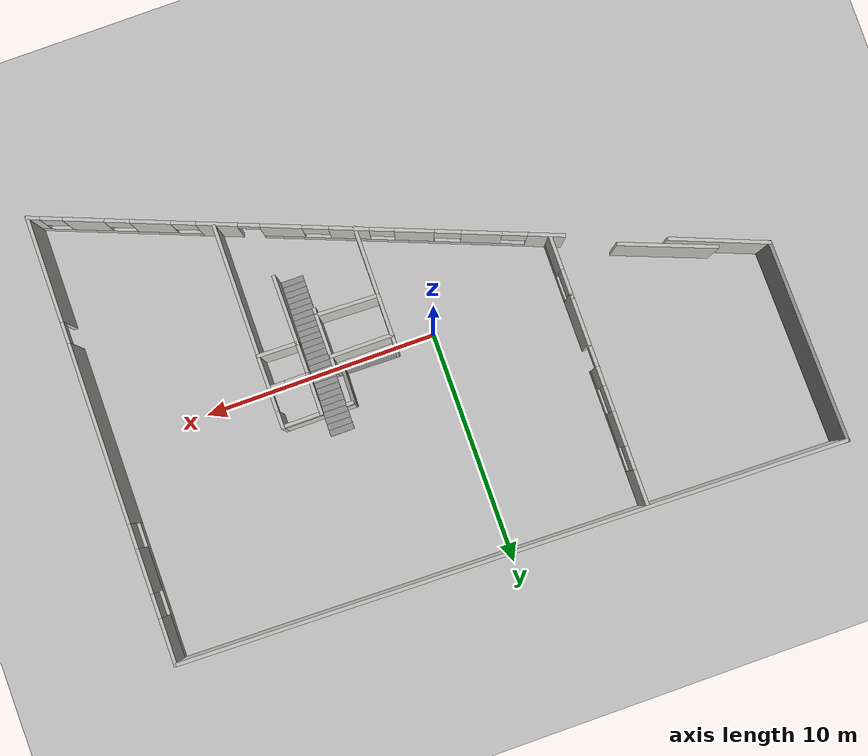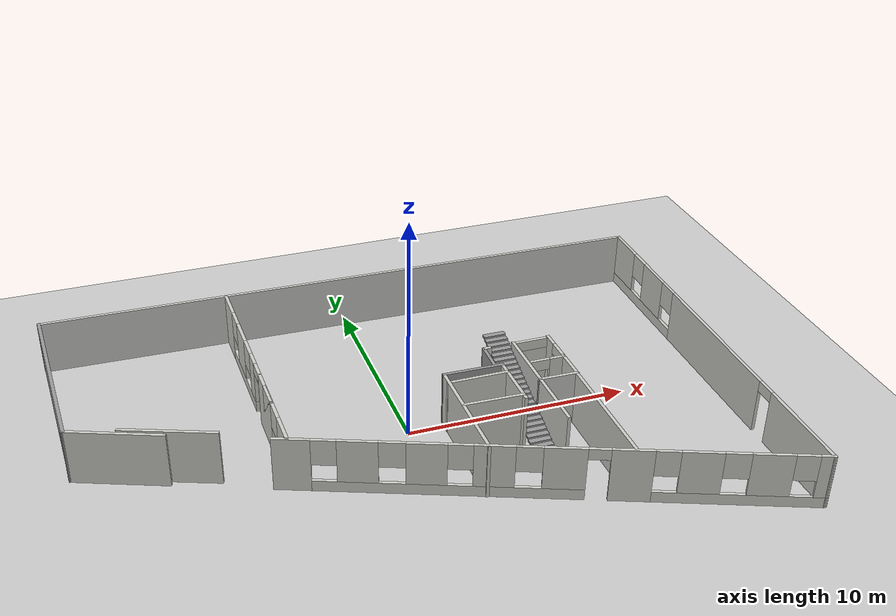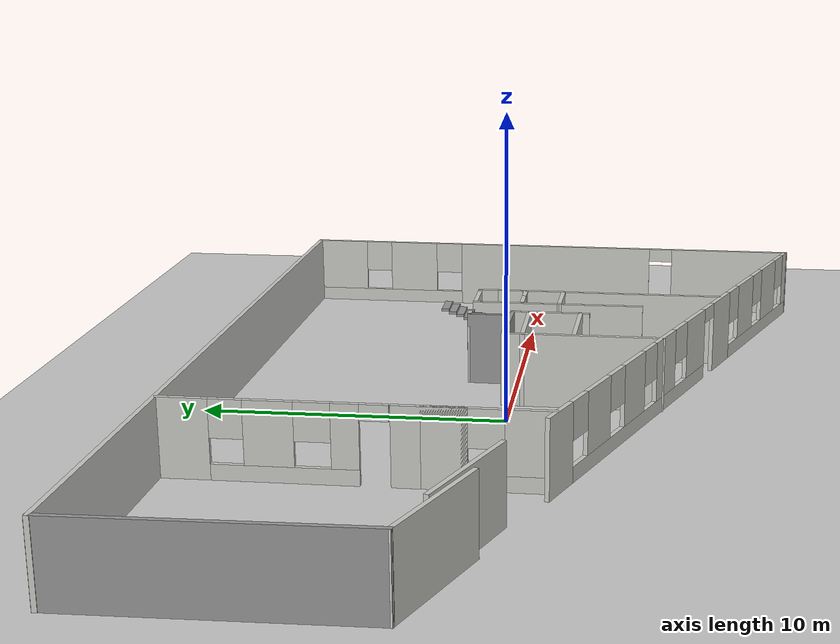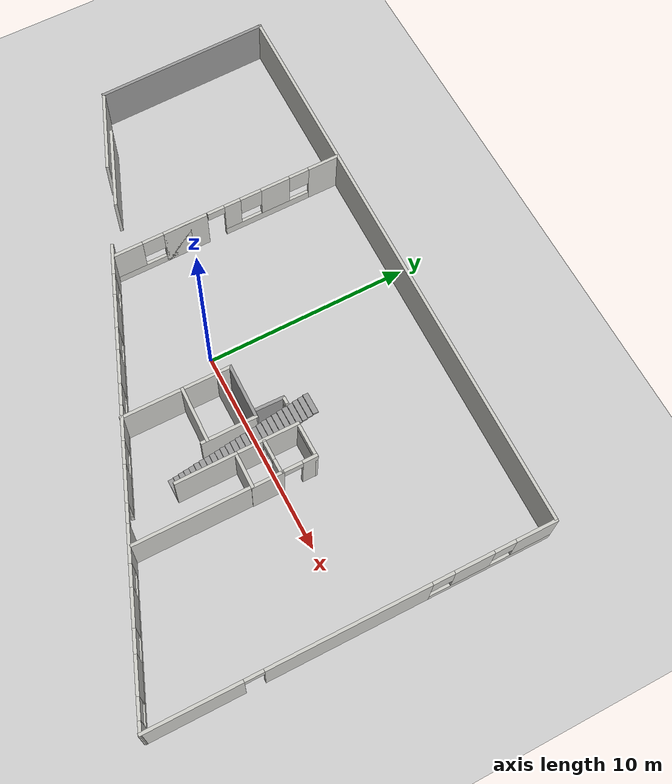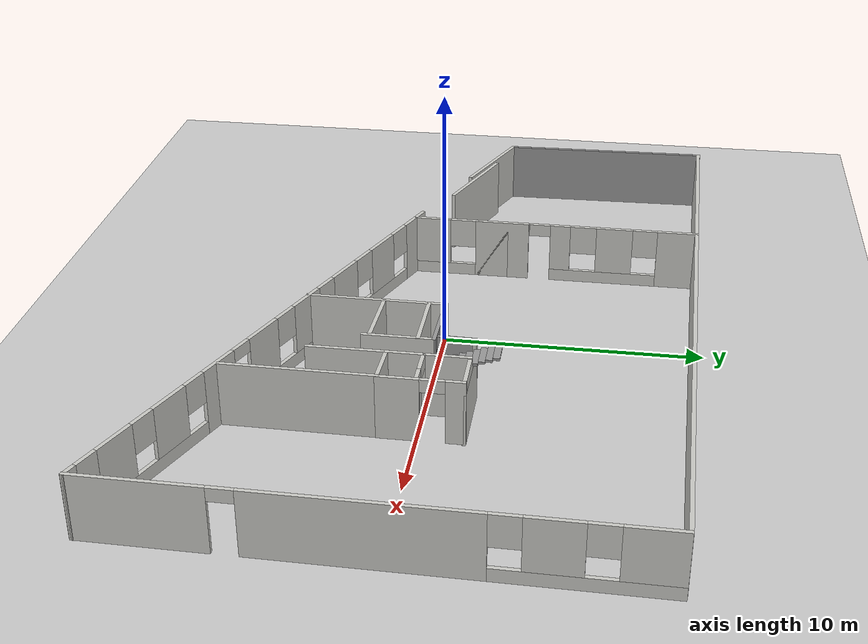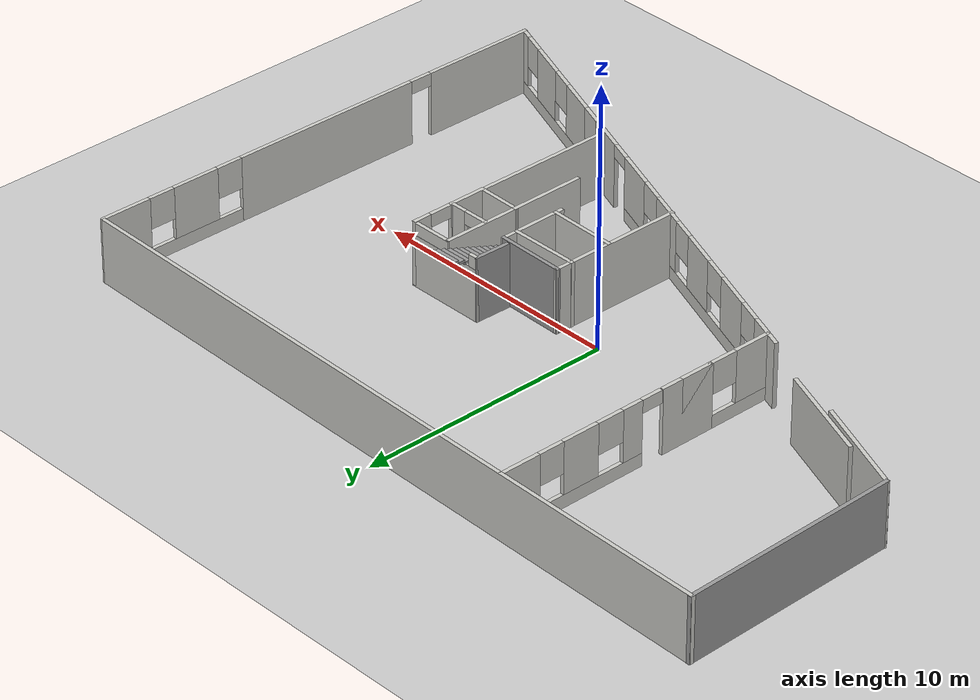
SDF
<?xml version="1.0" ?>
<sdf version="1.5">
  <world name="default">
      <gui>
        <camera name="user_camera">
          <pose>1 -6.8 6.1 0 0.6 1.76</pose>
        </camera>
      </gui>
    <!-- A global light source -->
    <include>
      <uri>model://sun</uri>
    </include>
    <!-- A ground plane -->
    <include>
      <uri>model://ground_plane</uri>
    </include>
    <include>
      <uri>model://asphalt_plane</uri>
    </include>
    <include>
      <uri>model://erle</uri>
    </include>
    <physics name='default_physics' default='0' type='ode'>
      <gravity>0 0 -9.8066</gravity>
      <ode>
        <solver>
          <type>quick</type>
          <iters>10</iters>
          <sor>1.3</sor>
          <use_dynamic_moi_rescaling>0</use_dynamic_moi_rescaling>
        </solver>
        <constraints>
          <cfm>0</cfm>
          <erp>0.2</erp>
          <contact_max_correcting_vel>100</contact_max_correcting_vel>
          <contact_surface_layer>0.001</contact_surface_layer>
        </constraints>
      </ode>
      <max_step_size>0.002</max_step_size>
      <real_time_factor>1</real_time_factor>
      <real_time_update_rate>500</real_time_update_rate>
      <magnetic_field>6e-06 2.3e-05 -4.2e-05</magnetic_field>
    </physics>
  </world>
</sdf>
